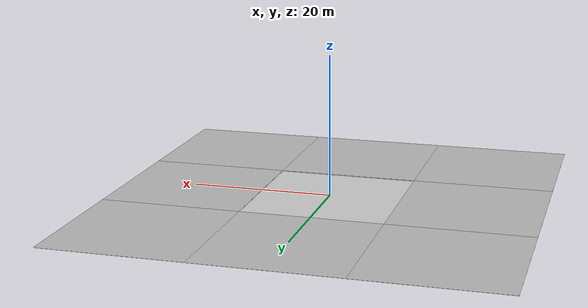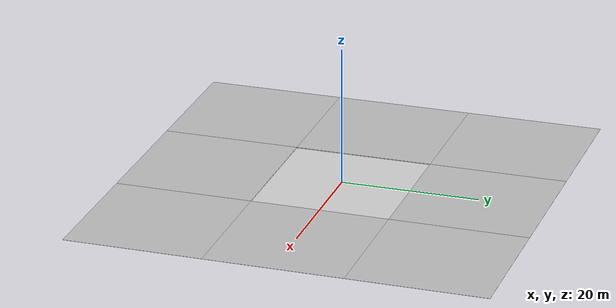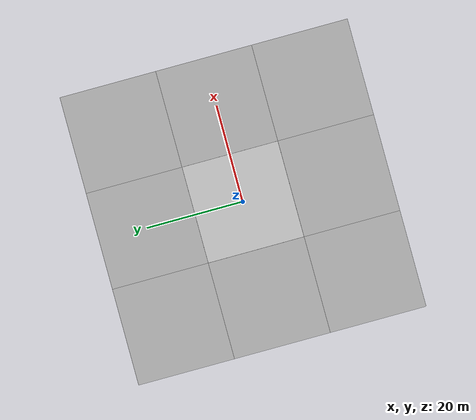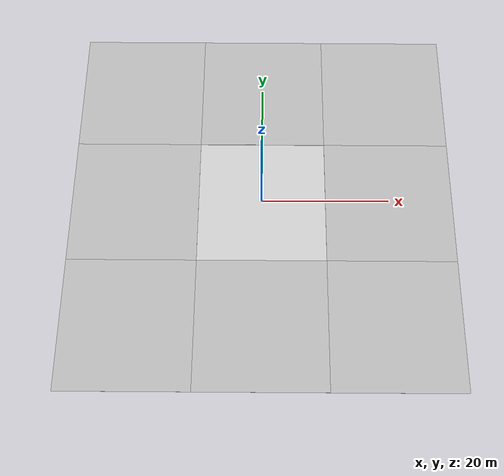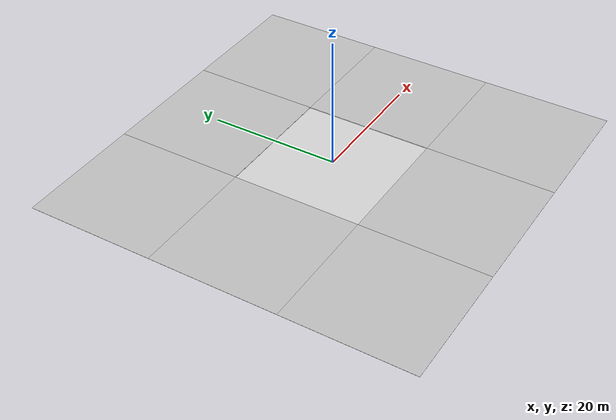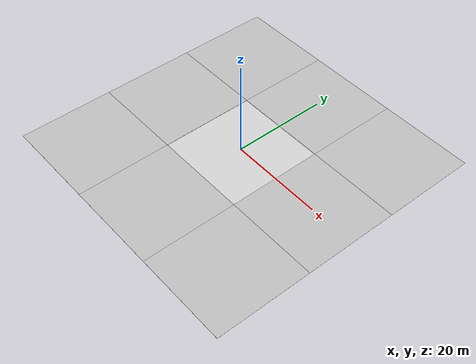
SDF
<sdf version="1.6">
 <world name="default">
  <light name="sun" type="directional">
   <pose>0 0 10 0 -0 0</pose>
   <diffuse>0.8 0.8 0.8 1</diffuse>
   <specular>0.2 0.2 0.2 1</specular>
   <attenuation>
    <range>1000</range>
    <constant>0.9</constant>
    <linear>0.01</linear>
    <quadratic>0.001</quadratic>
   </attenuation>
   <direction>-0.5 0.1 -0.9</direction>
  </light>
  <plugin name="ros_interface_plugin" filename="librotors_gazebo_ros_interface_plugin.so"/>
  <spherical_coordinates>
   <surface_model>EARTH_WGS84</surface_model>
   <latitude_deg>47.3667</latitude_deg>
   <longitude_deg>8.55</longitude_deg>
   <elevation>500</elevation>
   <heading_deg>0</heading_deg>
  </spherical_coordinates>
  <physics name="default_physics" default="0" type="ode">
   <ode>
    <solver>
     <type>quick</type>
     <iters>1000</iters>
     <sor>1.3</sor>
     <use_dynamic_moi_rescaling>0</use_dynamic_moi_rescaling>
    </solver>
    <constraints>
     <cfm>0</cfm>
     <erp>0.2</erp>
     <contact_max_correcting_vel>100</contact_max_correcting_vel>
     <contact_surface_layer>0.001</contact_surface_layer>
    </constraints>
   </ode>
   <max_step_size>0.01</max_step_size>
   <real_time_factor>1</real_time_factor>
   <real_time_update_rate>100</real_time_update_rate>
  </physics>
  <gravity>0 0 -9.8</gravity>
  <magnetic_field>6e-06 2.3e-05 -4.2e-05</magnetic_field>
  <atmosphere type="adiabatic"/>
  <scene><ambient>0.4 0.4 0.4 1</ambient><background>0.7 0.7 0.7 1</background><shadows>1</shadows></scene>
  <audio><device>default</device></audio>
  <model name="grass_plane">
   <static>1</static>
   <link name="link">
    <collision name="collision">
     <geometry><plane><normal>0 0 1</normal><size>20 20</size></plane></geometry>
     <surface><friction><ode><mu>100</mu><mu2>50</mu2></ode></friction></surface>
    </collision>
    <visual name="visual">
     <cast_shadows>0</cast_shadows>
     <geometry><plane><normal>0 0 1</normal><size>20 20</size></plane></geometry>
     <material>
      <script>
       <uri>model://grass_plane/materials/scripts/grass_plane.material</uri>
       <name>GrassPlane/Image</name>
      </script>
     </material>
    </visual>
   </link>
  </model>
  <model name="grass_plane_0">
   <static>1</static>
   <link name="link">
    <collision name="collision">
     <geometry><plane><normal>0 0 1</normal><size>20 20</size></plane></geometry>
     <surface><friction><ode><mu>100</mu><mu2>50</mu2></ode></friction></surface>
    </collision>
    <visual name="visual">
     <cast_shadows>0</cast_shadows>
     <geometry><plane><normal>0 0 1</normal><size>20 20</size></plane></geometry>
     <material>
      <script>
       <uri>model://grass_plane/materials/scripts/grass_plane.material</uri>
       <name>GrassPlane/Image</name>
      </script>
     </material>
    </visual>
   </link>
   <pose>-20 0 0 0 -0 0</pose>
  </model>
  <model name="grass_plane_1">
   <static>1</static>
   <link name="link">
    <collision name="collision">
     <geometry><plane><normal>0 0 1</normal><size>20 20</size></plane></geometry>
     <surface><friction><ode><mu>100</mu><mu2>50</mu2></ode></friction></surface>
    </collision>
    <visual name="visual">
     <cast_shadows>0</cast_shadows>
     <geometry><plane><normal>0 0 1</normal><size>20 20</size></plane></geometry>
     <material>
      <script>
       <uri>model://grass_plane/materials/scripts/grass_plane.material</uri>
       <name>GrassPlane/Image</name>
      </script>
     </material>
    </visual>
   </link>
   <pose>20 0 0 0 -0 0</pose>
  </model>
  <model name="grass_plane_2">
   <static>1</static>
   <link name="link">
    <collision name="collision">
     <geometry><plane><normal>0 0 1</normal><size>20 20</size></plane></geometry>
     <surface><friction><ode><mu>100</mu><mu2>50</mu2></ode></friction></surface>
    </collision>
    <visual name="visual">
     <cast_shadows>0</cast_shadows>
     <geometry><plane><normal>0 0 1</normal><size>20 20</size></plane></geometry>
     <material>
      <script>
       <uri>model://grass_plane/materials/scripts/grass_plane.material</uri>
       <name>GrassPlane/Image</name>
      </script>
     </material>
    </visual>
   </link>
   <pose>-20 20 0 0 -0 0</pose>
  </model>
  <model name="grass_plane_3">
   <static>1</static>
   <link name="link">
    <collision name="collision">
     <geometry><plane><normal>0 0 1</normal><size>20 20</size></plane></geometry>
     <surface><friction><ode><mu>100</mu><mu2>50</mu2></ode></friction></surface>
    </collision>
    <visual name="visual">
     <cast_shadows>0</cast_shadows>
     <geometry><plane><normal>0 0 1</normal><size>20 20</size></plane></geometry>
     <material>
      <script>
       <uri>model://grass_plane/materials/scripts/grass_plane.material</uri>
       <name>GrassPlane/Image</name>
      </script>
     </material>
    </visual>
   </link>
   <pose>0 20 0 0 -0 0</pose>
  </model>
  <model name="grass_plane_4">
   <static>1</static>
   <link name="link">
    <collision name="collision">
     <geometry><plane><normal>0 0 1</normal><size>20 20</size></plane></geometry>
     <surface><friction><ode><mu>100</mu><mu2>50</mu2></ode></friction></surface>
    </collision>
    <visual name="visual">
     <cast_shadows>0</cast_shadows>
     <geometry><plane><normal>0 0 1</normal><size>20 20</size></plane></geometry>
     <material>
      <script>
       <uri>model://grass_plane/materials/scripts/grass_plane.material</uri>
       <name>GrassPlane/Image</name>
      </script>
     </material>
    </visual>
   </link>
   <pose>20 20 0 0 -0 0</pose>
  </model>
  <model name="grass_plane_5">
   <static>1</static>
   <link name="link">
    <collision name="collision">
     <geometry><plane><normal>0 0 1</normal><size>20 20</size></plane></geometry>
     <surface><friction><ode><mu>100</mu><mu2>50</mu2></ode></friction></surface>
    </collision>
    <visual name="visual">
     <cast_shadows>0</cast_shadows>
     <geometry><plane><normal>0 0 1</normal><size>20 20</size></plane></geometry>
     <material>
      <script>
       <uri>model://grass_plane/materials/scripts/grass_plane.material</uri>
       <name>GrassPlane/Image</name>
      </script>
     </material>
    </visual>
   </link>
   <pose>-20 -20 0 0 -0 0</pose>
  </model>
  <model name="grass_plane_6">
   <static>1</static>
   <link name="link">
    <collision name="collision">
     <geometry><plane><normal>0 0 1</normal><size>20 20</size></plane></geometry>
     <surface><friction><ode><mu>100</mu><mu2>50</mu2></ode></friction></surface>
    </collision>
    <visual name="visual">
     <cast_shadows>0</cast_shadows>
     <geometry><plane><normal>0 0 1</normal><size>20 20</size></plane></geometry>
     <material>
      <script>
       <uri>model://grass_plane/materials/scripts/grass_plane.material</uri>
       <name>GrassPlane/Image</name>
      </script>
     </material>
    </visual>
   </link>
   <pose>0 -20 0 0 -0 0</pose>
  </model>
  <model name="grass_plane_7">
   <static>1</static>
   <link name="link">
    <collision name="collision">
     <geometry><plane><normal>0 0 1</normal><size>20 20</size></plane></geometry>
     <surface><friction><ode><mu>100</mu><mu2>50</mu2></ode></friction></surface>
    </collision>
    <visual name="visual">
     <cast_shadows>0</cast_shadows>
     <geometry><plane><normal>0 0 1</normal><size>20 20</size></plane></geometry>
     <material>
      <script>
       <uri>model://grass_plane/materials/scripts/grass_plane.material</uri>
       <name>GrassPlane/Image</name>
      </script>
     </material>
    </visual>
   </link>
   <pose>20 -20 0 0 -0 0</pose>
  </model>
  <light name="user_directional_light_0" type="directional">
   <pose>-1.27335 9.09641 1 0 -0 0</pose>
   <diffuse>0.5 0.5 0.5 1</diffuse>
   <specular>0.1 0.1 0.1 1</specular>
   <direction>0.1 0.1 -0.9</direction>
   <attenuation>
    <range>20</range>
    <constant>0.5</constant>
    <linear>0.01</linear>
    <quadratic>0.001</quadratic>
   </attenuation>
  </light>
 </world>
</sdf>
